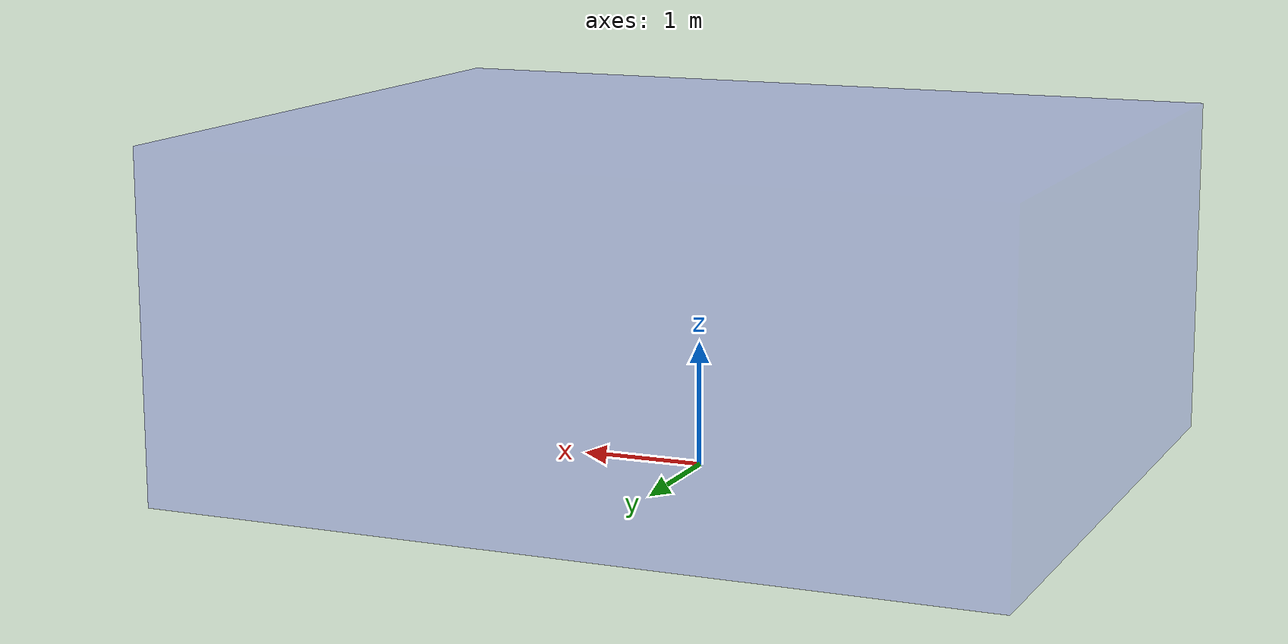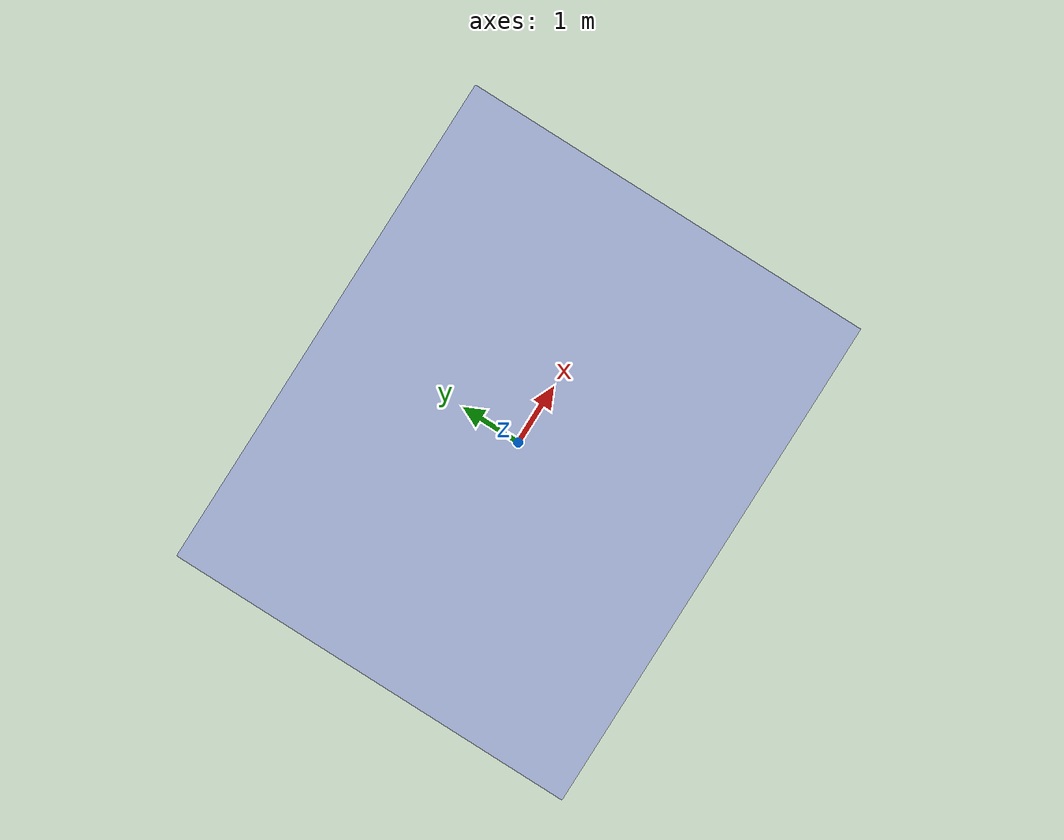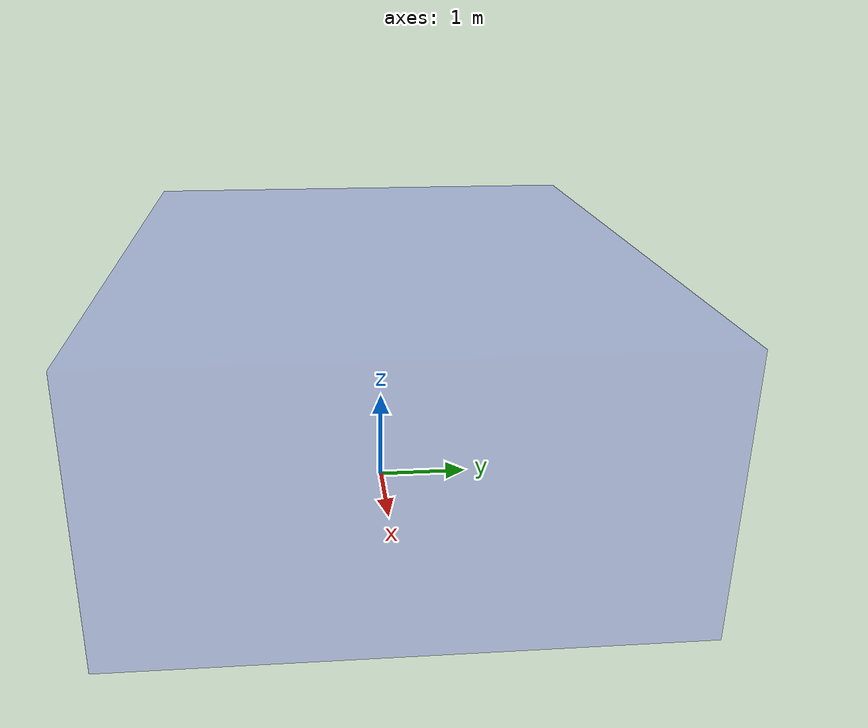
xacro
<?xml version="1.0"?>
<robot xmlns:xacro="http://ros.org/wiki/xacro" name="drone_arena">

  <link name="arena">
    <visual>
      <origin xyz="0 0 1.3716" rpy="0 0 0"/>
      <geometry>
        <box size="6.7056 5.4864 2.7432"/>
      </geometry>
      <material name="transparent">
        <color rgba="0 0 1 0.1"/>
      </material>
    </visual>
  </link>

  <xacro:macro name="drone_instance" params="name mesh">
    <link name="${name}_base_link">
      <visual>
        <geometry>
          <mesh filename="package://drone_viz/meshes/${mesh}" scale="0.1 0.1 0.1"/>
        </geometry>
        <material name="gray">
          <color rgba="1 0 0"/>
        </material>
      </visual>
    </link>

    <joint name="${name}_joint" type="fixed">
      <parent link="arena"/>
      <child link="${name}_base_link"/>
      <origin xyz="0 0 0" rpy="0 0 0"/>
    </joint>
  </xacro:macro>

</robot>
